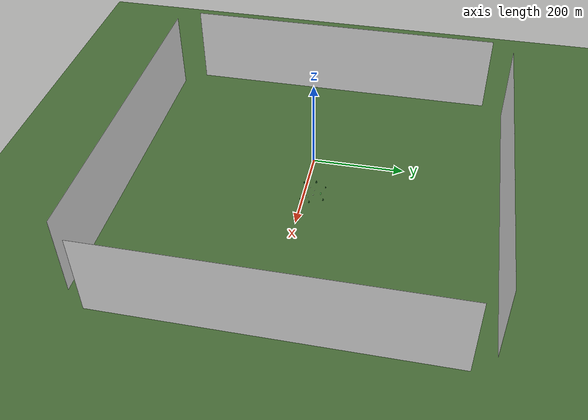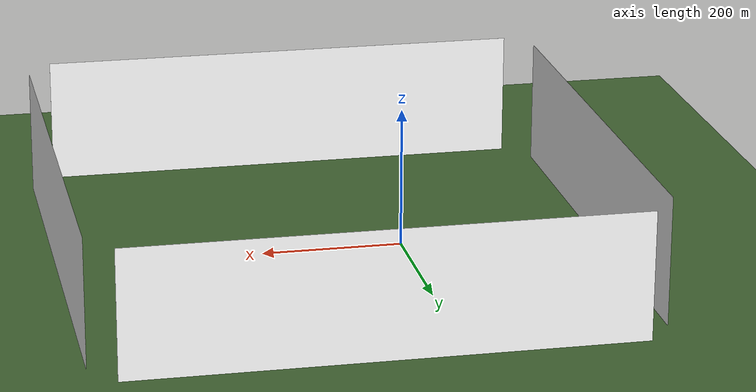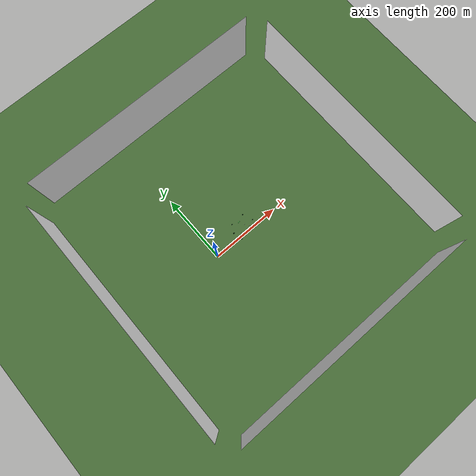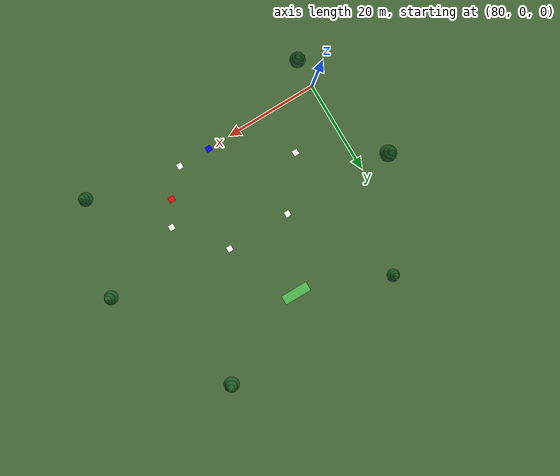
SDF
<?xml version="1.0" encoding="UTF-8"?>
<sdf version="1.9">
  <world name="default">
    <physics type="ode">
      <max_step_size>0.004</max_step_size>
      <real_time_factor>1.0</real_time_factor>
      <real_time_update_rate>250</real_time_update_rate>
    </physics>
    <gravity>0 0 -9.8</gravity>
    <magnetic_field>6e-06 2.3e-05 -4.2e-05</magnetic_field>
    <atmosphere type="adiabatic"/>
    <scene>
      <grid>false</grid>
      <ambient>0.6 0.6 0.6 1</ambient>
      <background>0.58 0.74 0.95 1</background>
      <shadows>true</shadows>
      <sky></sky>
    </scene>
    <model name="ground_plane">
      <static>true</static>
      <link name="link">
        <collision name="collision">
          <geometry><plane><normal>0 0 1</normal><size>1 1</size></plane></geometry>
          <surface><friction><ode/></friction><bounce/><contact/></surface>
        </collision>
        <visual name="visual">
          <geometry><plane><normal>0 0 1</normal><size>1000 1000</size></plane></geometry>
          <material>
            <ambient>0.22 0.34 0.18 1</ambient>
            <diffuse>0.26 0.40 0.20 1</diffuse>
            <specular>0.05 0.07 0.04 1</specular>
          </material>
        </visual>
        <pose>0 0 0 0 -0 0</pose>
        <inertial><pose>0 0 0 0 -0 0</pose><mass>1</mass>
          <inertia><ixx>1</ixx><ixy>0</ixy><ixz>0</ixz><iyy>1</iyy><iyz>0</iyz><izz>1</izz></inertia>
        </inertial>
        <enable_wind>false</enable_wind>
      </link>
      <pose>0 0 0 0 -0 0</pose>
      <self_collide>false</self_collide>
    </model>
    <light name="sunUTC" type="directional">
      <pose>0 0 500 0 -0 0</pose>
      <cast_shadows>true</cast_shadows>
      <intensity>1</intensity>
      <direction>0.001 0.625 -0.78</direction>
      <diffuse>0.904 0.904 0.904 1</diffuse>
      <specular>0.271 0.271 0.271 1</specular>
      <attenuation><range>2000</range><linear>0</linear><constant>1</constant><quadratic>0</quadratic></attenuation>
      <spot><inner_angle>0</inner_angle><outer_angle>0</outer_angle><falloff>0</falloff></spot>
    </light>
    <spherical_coordinates>
      <surface_model>EARTH_WGS84</surface_model>
      <world_frame_orientation>ENU</world_frame_orientation>
      <latitude_deg>47.397971057728974</latitude_deg>
      <longitude_deg> 8.546163739800146</longitude_deg>
      <elevation>0</elevation>
    </spherical_coordinates>

    <include><name>mavi_alan</name><uri>model://mavi_alan</uri><pose>105 0 0.08 0 0 0</pose></include>
    <include><name>kirmizi_alan</name><uri>model://kirmizi_alan</uri><pose>117 5 0.08 0 0 0</pose></include>

    <include><name>qr_11</name><uri>model://qr_11</uri><pose>98 0 0.1 0 0 0</pose></include>
    <include><name>qr_22</name><uri>model://qr_22</uri><pose>112 0 0.1 0 0 0</pose></include>
    <include><name>qr_33</name><uri>model://qr_33</uri><pose>120 10 0.1 0 0 0</pose></include>
    <include><name>qr_44</name><uri>model://qr_44</uri><pose>112 20 0.1 0 0 0</pose></include>
    <include><name>qr_55</name><uri>model://qr_55</uri><pose>98 20 0.1 0 0 0</pose></include>
    <include><name>qr_66</name><uri>model://qr_66</uri><pose>90 10 0.1 0 0 0</pose></include>

    <model name="black_platform">
      <static>true</static>
      <pose>105 35 0.05 0 0 0</pose>
      <link name="link">
        <collision name="collision"><geometry><box><size>6 2 0.1</size></box></geometry></collision>
        <visual name="visual">
          <geometry><box><size>6 2 0.1</size></box></geometry>
          <material><ambient>0.3 0.7 0.3 1</ambient><diffuse>0.3 0.7 0.3 1</diffuse><specular>0.1 0.1 0.1 1</specular></material>
        </visual>
      </link>
    </model>

    <!-- cevre cam agaclari -->
    <model name="pine_0">
      <static>true</static><pose>80 -6 0 0 0 0</pose>
      <link name="l">
        <visual name="trunk"><pose>0 0 1.1 0 0 0</pose>
          <geometry><cylinder><radius>0.275</radius><length>2.2</length></cylinder></geometry>
          <material><ambient>0.25 0.16 0.08 1</ambient><diffuse>0.30 0.20 0.10 1</diffuse></material></visual>
        <visual name="f1"><pose>0 0 2.8600000000000003 0 0 0</pose>
          <geometry><cone><radius>1.6500000000000001</radius><length>2.8600000000000003</length></cone></geometry>
          <material><ambient>0.10 0.30 0.12 1</ambient><diffuse>0.13 0.36 0.15 1</diffuse></material></visual>
        <visual name="f2"><pose>0 0 4.4 0 0 0</pose>
          <geometry><cone><radius>1.2100000000000002</radius><length>2.4200000000000004</length></cone></geometry>
          <material><ambient>0.11 0.33 0.13 1</ambient><diffuse>0.14 0.40 0.16 1</diffuse></material></visual>
        <visual name="f3"><pose>0 0 5.720000000000001 0 0 0</pose>
          <geometry><cone><radius>0.77</radius><length>1.9800000000000002</length></cone></geometry>
          <material><ambient>0.12 0.36 0.14 1</ambient><diffuse>0.15 0.44 0.17 1</diffuse></material></visual>
      </link>
    </model>
    <model name="pine_1">
      <static>true</static><pose>132 -4 0 0 0 0</pose>
      <link name="l">
        <visual name="trunk"><pose>0 0 1.0 0 0 0</pose>
          <geometry><cylinder><radius>0.25</radius><length>2.0</length></cylinder></geometry>
          <material><ambient>0.25 0.16 0.08 1</ambient><diffuse>0.30 0.20 0.10 1</diffuse></material></visual>
        <visual name="f1"><pose>0 0 2.6 0 0 0</pose>
          <geometry><cone><radius>1.5</radius><length>2.6</length></cone></geometry>
          <material><ambient>0.10 0.30 0.12 1</ambient><diffuse>0.13 0.36 0.15 1</diffuse></material></visual>
        <visual name="f2"><pose>0 0 4.0 0 0 0</pose>
          <geometry><cone><radius>1.1</radius><length>2.2</length></cone></geometry>
          <material><ambient>0.11 0.33 0.13 1</ambient><diffuse>0.14 0.40 0.16 1</diffuse></material></visual>
        <visual name="f3"><pose>0 0 5.2 0 0 0</pose>
          <geometry><cone><radius>0.7</radius><length>1.8</length></cone></geometry>
          <material><ambient>0.12 0.36 0.14 1</ambient><diffuse>0.15 0.44 0.17 1</diffuse></material></visual>
      </link>
    </model>
    <model name="pine_2">
      <static>true</static><pose>74 20 0 0 0 0</pose>
      <link name="l">
        <visual name="trunk"><pose>0 0 1.2 0 0 0</pose>
          <geometry><cylinder><radius>0.3</radius><length>2.4</length></cylinder></geometry>
          <material><ambient>0.25 0.16 0.08 1</ambient><diffuse>0.30 0.20 0.10 1</diffuse></material></visual>
        <visual name="f1"><pose>0 0 3.12 0 0 0</pose>
          <geometry><cone><radius>1.7999999999999998</radius><length>3.12</length></cone></geometry>
          <material><ambient>0.10 0.30 0.12 1</ambient><diffuse>0.13 0.36 0.15 1</diffuse></material></visual>
        <visual name="f2"><pose>0 0 4.8 0 0 0</pose>
          <geometry><cone><radius>1.32</radius><length>2.64</length></cone></geometry>
          <material><ambient>0.11 0.33 0.13 1</ambient><diffuse>0.14 0.40 0.16 1</diffuse></material></visual>
        <visual name="f3"><pose>0 0 6.24 0 0 0</pose>
          <geometry><cone><radius>0.84</radius><length>2.16</length></cone></geometry>
          <material><ambient>0.12 0.36 0.14 1</ambient><diffuse>0.15 0.44 0.17 1</diffuse></material></visual>
      </link>
    </model>
    <model name="pine_3">
      <static>true</static><pose>138 16 0 0 0 0</pose>
      <link name="l">
        <visual name="trunk"><pose>0 0 1.0 0 0 0</pose>
          <geometry><cylinder><radius>0.25</radius><length>2.0</length></cylinder></geometry>
          <material><ambient>0.25 0.16 0.08 1</ambient><diffuse>0.30 0.20 0.10 1</diffuse></material></visual>
        <visual name="f1"><pose>0 0 2.6 0 0 0</pose>
          <geometry><cone><radius>1.5</radius><length>2.6</length></cone></geometry>
          <material><ambient>0.10 0.30 0.12 1</ambient><diffuse>0.13 0.36 0.15 1</diffuse></material></visual>
        <visual name="f2"><pose>0 0 4.0 0 0 0</pose>
          <geometry><cone><radius>1.1</radius><length>2.2</length></cone></geometry>
          <material><ambient>0.11 0.33 0.13 1</ambient><diffuse>0.14 0.40 0.16 1</diffuse></material></visual>
        <visual name="f3"><pose>0 0 5.2 0 0 0</pose>
          <geometry><cone><radius>0.7</radius><length>1.8</length></cone></geometry>
          <material><ambient>0.12 0.36 0.14 1</ambient><diffuse>0.15 0.44 0.17 1</diffuse></material></visual>
      </link>
    </model>
    <model name="pine_4">
      <static>true</static><pose>86 42 0 0 0 0</pose>
      <link name="l">
        <visual name="trunk"><pose>0 0 0.9 0 0 0</pose>
          <geometry><cylinder><radius>0.225</radius><length>1.8</length></cylinder></geometry>
          <material><ambient>0.25 0.16 0.08 1</ambient><diffuse>0.30 0.20 0.10 1</diffuse></material></visual>
        <visual name="f1"><pose>0 0 2.3400000000000003 0 0 0</pose>
          <geometry><cone><radius>1.35</radius><length>2.3400000000000003</length></cone></geometry>
          <material><ambient>0.10 0.30 0.12 1</ambient><diffuse>0.13 0.36 0.15 1</diffuse></material></visual>
        <visual name="f2"><pose>0 0 3.6 0 0 0</pose>
          <geometry><cone><radius>0.9900000000000001</radius><length>1.9800000000000002</length></cone></geometry>
          <material><ambient>0.11 0.33 0.13 1</ambient><diffuse>0.14 0.40 0.16 1</diffuse></material></visual>
        <visual name="f3"><pose>0 0 4.680000000000001 0 0 0</pose>
          <geometry><cone><radius>0.63</radius><length>1.62</length></cone></geometry>
          <material><ambient>0.12 0.36 0.14 1</ambient><diffuse>0.15 0.44 0.17 1</diffuse></material></visual>
      </link>
    </model>
    <model name="pine_5">
      <static>true</static><pose>126 44 0 0 0 0</pose>
      <link name="l">
        <visual name="trunk"><pose>0 0 1.1 0 0 0</pose>
          <geometry><cylinder><radius>0.275</radius><length>2.2</length></cylinder></geometry>
          <material><ambient>0.25 0.16 0.08 1</ambient><diffuse>0.30 0.20 0.10 1</diffuse></material></visual>
        <visual name="f1"><pose>0 0 2.8600000000000003 0 0 0</pose>
          <geometry><cone><radius>1.6500000000000001</radius><length>2.8600000000000003</length></cone></geometry>
          <material><ambient>0.10 0.30 0.12 1</ambient><diffuse>0.13 0.36 0.15 1</diffuse></material></visual>
        <visual name="f2"><pose>0 0 4.4 0 0 0</pose>
          <geometry><cone><radius>1.2100000000000002</radius><length>2.4200000000000004</length></cone></geometry>
          <material><ambient>0.11 0.33 0.13 1</ambient><diffuse>0.14 0.40 0.16 1</diffuse></material></visual>
        <visual name="f3"><pose>0 0 5.720000000000001 0 0 0</pose>
          <geometry><cone><radius>0.77</radius><length>1.9800000000000002</length></cone></geometry>
          <material><ambient>0.12 0.36 0.14 1</ambient><diffuse>0.15 0.44 0.17 1</diffuse></material></visual>
      </link>
    </model>
    <!-- uzak dag silueti (foto gibi, gercek yukseklik yok). istemezsen bu 4 modeli sil -->
    <model name="mtnbg_0">
      <static>true</static><pose>105 -380 90 0 0 0</pose>
      <link name="l"><visual name="v">
        <geometry><box><size>700 0.2 180</size></box></geometry>
        <material>
          <ambient>1 1 1 1</ambient><diffuse>1 1 1 1</diffuse>
          <pbr><metal><albedo_map>file:///home/asus/PX4-Autopilot/Tools/simulation/gz/worlds/terrain/mountains_bg.png</albedo_map></metal></pbr>
        </material>
      </visual></link>
    </model>
    <model name="mtnbg_1">
      <static>true</static><pose>105 410 90 0 0 3.141592653589793</pose>
      <link name="l"><visual name="v">
        <geometry><box><size>700 0.2 180</size></box></geometry>
        <material>
          <ambient>1 1 1 1</ambient><diffuse>1 1 1 1</diffuse>
          <pbr><metal><albedo_map>file:///home/asus/PX4-Autopilot/Tools/simulation/gz/worlds/terrain/mountains_bg.png</albedo_map></metal></pbr>
        </material>
      </visual></link>
    </model>
    <model name="mtnbg_2">
      <static>true</static><pose>-280 15 90 0 0 1.5707963267948966</pose>
      <link name="l"><visual name="v">
        <geometry><box><size>700 0.2 180</size></box></geometry>
        <material>
          <ambient>1 1 1 1</ambient><diffuse>1 1 1 1</diffuse>
          <pbr><metal><albedo_map>file:///home/asus/PX4-Autopilot/Tools/simulation/gz/worlds/terrain/mountains_bg.png</albedo_map></metal></pbr>
        </material>
      </visual></link>
    </model>
    <model name="mtnbg_3">
      <static>true</static><pose>490 15 90 0 0 -1.5707963267948966</pose>
      <link name="l"><visual name="v">
        <geometry><box><size>700 0.2 180</size></box></geometry>
        <material>
          <ambient>1 1 1 1</ambient><diffuse>1 1 1 1</diffuse>
          <pbr><metal><albedo_map>file:///home/asus/PX4-Autopilot/Tools/simulation/gz/worlds/terrain/mountains_bg.png</albedo_map></metal></pbr>
        </material>
      </visual></link>
    </model>
  </world>
</sdf>

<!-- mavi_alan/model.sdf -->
<sdf version="1.6">
  <model name="mavi_alan">
    <static>true</static>
    <link name="link">
      <visual name="visual">
        <geometry><plane><normal>0 0 1</normal><size>1.2 1.2</size></plane></geometry>
        <material><ambient>0 0 1 1</ambient><diffuse>0 0 1 1</diffuse></material>
      </visual>
    </link>
  </model>
</sdf>

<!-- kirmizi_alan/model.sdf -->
<sdf version="1.6">
  <model name="kirmizi_alan">
    <static>true</static>
    <link name="link">
      <visual name="visual">
        <geometry><plane><normal>0 0 1</normal><size>1.2 1.2</size></plane></geometry>
        <material><ambient>1 0 0 1</ambient><diffuse>1 0 0 1</diffuse></material>
      </visual>
    </link>
  </model>
</sdf>

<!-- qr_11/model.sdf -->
<sdf version="1.6">
  <model name="qr_11">
    <static>true</static>
    <link name="link">
      <visual name="visual">
        <geometry><plane><normal>0 0 1</normal><size>1.2 1.2</size></plane></geometry>
        <material>
          <ambient>0.8 0.8 0.8 1</ambient> <!-- Işığı %80 yansıt, bembeyaz yapma -->
          <diffuse>1 1 1 1</diffuse>
          <specular>0 0 0 1</specular>
          <pbr>
            <metal>
              <albedo_map>materials/textures/qr11.jpeg</albedo_map>
              <roughness>0.9</roughness>
              <metalness>0.0</metalness>
            </metal>
          </pbr>
        </material>
      </visual>
    </link>
  </model>
</sdf>

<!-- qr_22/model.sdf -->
<sdf version="1.6">
  <model name="qr_22">
    <static>true</static>
    <link name="link">
      <visual name="visual">
        <geometry><plane><normal>0 0 1</normal><size>1.2 1.2</size></plane></geometry>
        <material>
          <ambient>0.8 0.8 0.8 1</ambient> <!-- Işığı %80 yansıt, bembeyaz yapma -->
          <diffuse>1 1 1 1</diffuse>
          <specular>0 0 0 1</specular>
          <pbr>
            <metal>
              <albedo_map>materials/textures/qr22.jpeg</albedo_map>
              <roughness>0.9</roughness>
              <metalness>0.0</metalness>
            </metal>
          </pbr>
        </material>
      </visual>
    </link>
  </model>
</sdf>

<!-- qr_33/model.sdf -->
<sdf version="1.6">
  <model name="qr_33">
    <static>true</static>
    <link name="link">
      <visual name="visual">
        <geometry><plane><normal>0 0 1</normal><size>1.2 1.2</size></plane></geometry>
        <material>
          <ambient>0.8 0.8 0.8 1</ambient> <!-- Işığı %80 yansıt, bembeyaz yapma -->
          <diffuse>1 1 1 1</diffuse>
          <specular>0 0 0 1</specular>
          <pbr>
            <metal>
              <albedo_map>materials/textures/qr33.jpeg</albedo_map>
              <roughness>0.9</roughness>
              <metalness>0.0</metalness>
            </metal>
          </pbr>
        </material>
      </visual>
    </link>
  </model>
</sdf>

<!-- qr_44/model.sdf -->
<sdf version="1.6">
  <model name="qr_44">
    <static>true</static>
    <link name="link">
      <visual name="visual">
        <geometry><plane><normal>0 0 1</normal><size>1.2 1.2</size></plane></geometry>
        <material>
          <ambient>0.8 0.8 0.8 1</ambient> <!-- Işığı %80 yansıt, bembeyaz yapma -->
          <diffuse>1 1 1 1</diffuse>
          <specular>0 0 0 1</specular>
          <pbr>
            <metal>
              <albedo_map>materials/textures/qr44.jpeg</albedo_map>
              <roughness>0.9</roughness>
              <metalness>0.0</metalness>
            </metal>
          </pbr>
        </material>
      </visual>
    </link>
  </model>
</sdf>

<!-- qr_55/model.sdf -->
<sdf version="1.6">
  <model name="qr_55">
    <static>true</static>
    <link name="link">
      <visual name="visual">
        <geometry><plane><normal>0 0 1</normal><size>1.2 1.2</size></plane></geometry>
        <material>
          <ambient>0.8 0.8 0.8 1</ambient> <!-- Işığı %80 yansıt, bembeyaz yapma -->
          <diffuse>1 1 1 1</diffuse>
          <specular>0 0 0 1</specular>
          <pbr>
            <metal>
              <albedo_map>materials/textures/qr55.jpeg</albedo_map>
              <roughness>0.9</roughness>
              <metalness>0.0</metalness>
            </metal>
          </pbr>
        </material>
      </visual>
    </link>
  </model>
</sdf>

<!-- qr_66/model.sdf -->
<sdf version="1.6">
  <model name="qr_66">
    <static>true</static>
    <link name="link">
      <visual name="visual">
        <geometry><plane><normal>0 0 1</normal><size>1.2 1.2</size></plane></geometry>
        <material>
          <ambient>0.8 0.8 0.8 1</ambient> <!-- Işığı %80 yansıt, bembeyaz yapma -->
          <diffuse>1 1 1 1</diffuse>
          <specular>0 0 0 1</specular>
          <pbr>
            <metal>
              <albedo_map>materials/textures/qr66.jpeg</albedo_map>
              <roughness>0.9</roughness>
              <metalness>0.0</metalness>
            </metal>
          </pbr>
        </material>
      </visual>
    </link>
  </model>
</sdf>
